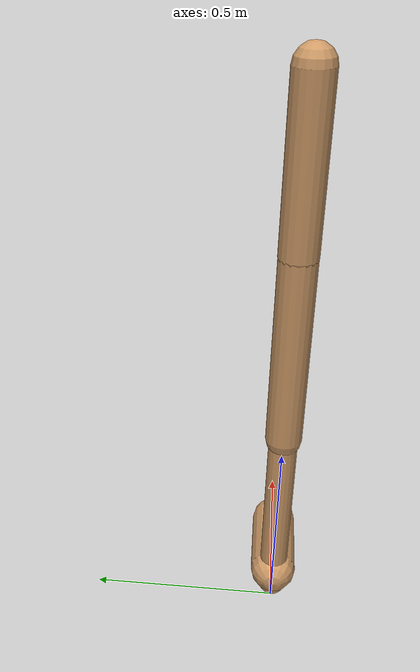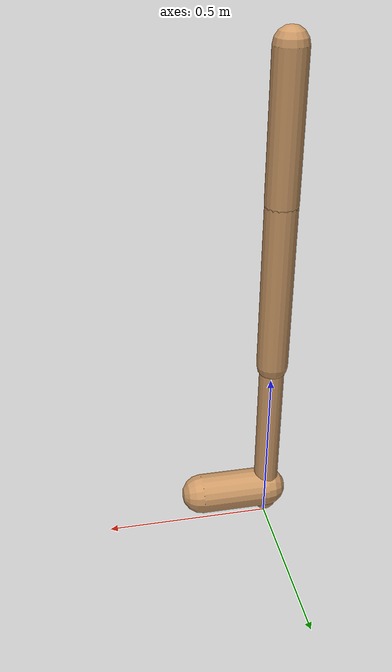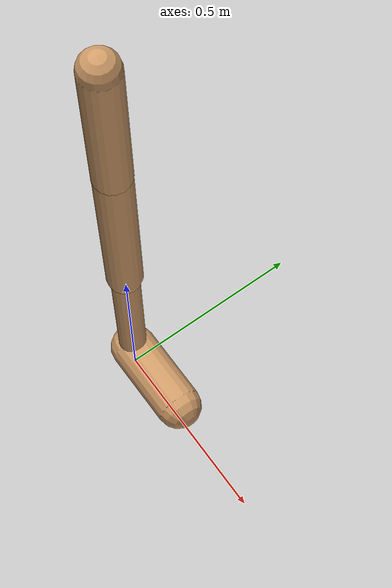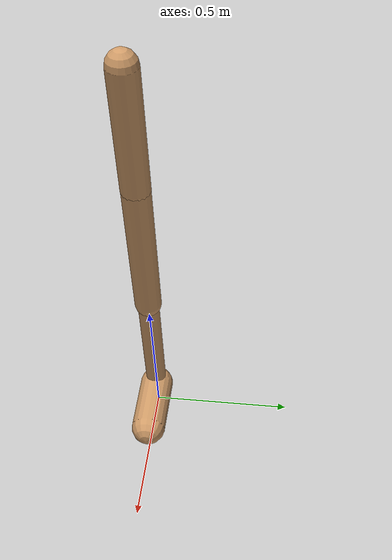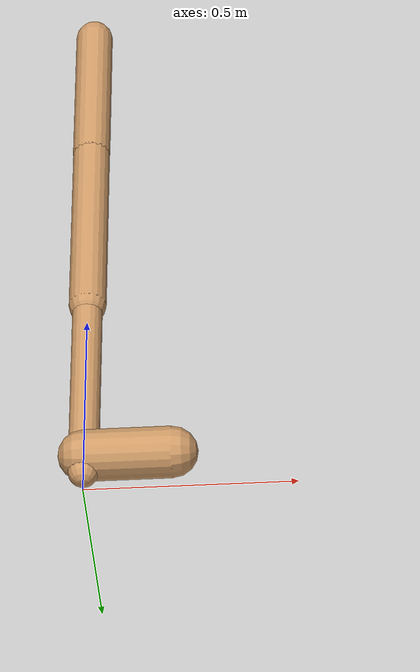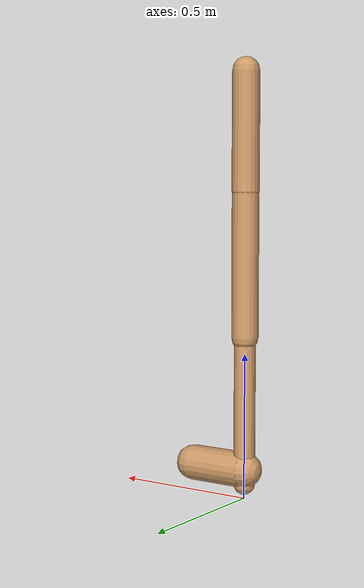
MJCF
<mujoco model="walker2d">
  <compiler angle="degree" coordinate="global" inertiafromgeom="true" />
  <default>
    <joint armature="0.01" damping=".1" limited="true" />
    <geom conaffinity="0" condim="3" contype="1" density="1000" friction="0.8 .1 .1" rgba="0.8 0.6 .4 1" />
  </default>
  <option integrator="RK4" timestep="0.002" />
  <worldbody>

    <body name="torso" pos="0 0 0.09145475375840392">
      <joint armature="0" axis="1 0 0" damping="0" limited="false" name="ignorex" pos="0 0 0" stiffness="0" type="slide" />
      <joint armature="0" axis="0 0 1" damping="0" limited="false" name="ignorez" pos="0 0 0" ref="1.25" stiffness="0" type="slide" />
      <joint armature="0" axis="0 1 0" damping="0" limited="false" name="ignorey" pos="0 0 0" stiffness="0" type="hinge" />
      <geom fromto="0 0 1.45 0 0 1.05" name="torso_geom" size="0.04643941735337781" type="capsule" />
      <body name="thigh">
        <joint axis="0 -1 0" name="thigh_joint" pos="0 0 1.05" range="-150 0" type="hinge" />
        <geom fromto="0.0 0.0 1.05 0.0 0.0 0.5566793271670718" name="thigh_geom" size="0.045697735717336894" type="capsule" />
        <body name="leg" pos="0.0 0.0 -0.043320672832928175">
          <joint axis="0 -1 0" name="leg_joint" pos="0 0 0.6" range="-150 0" type="hinge" />
          <geom fromto="0.0 0.0 0.6 0.0 0.0 0.05186591907452426" name="leg_geom" size="0.03655818857386951" type="capsule" />
          <body name="foot" pos="0.0 0.0 -0.04813408092547575">
            <joint axis="0 -1 0" name="foot_joint" pos="0 0 0.1" range="-45 45" type="hinge" />
            <geom fromto="-0.0 0.0 0.1 0.20727291376053425 0.0 0.1" name="foot_geom" size="0.060983197562008" type="capsule" />
          </body>
        </body>
      </body>

      <body name="thigh_left">
        <joint axis="0 -1 0" name="thigh_left_joint" pos="0 0 1.05" range="-150 0" type="hinge" />
        <geom fromto="0.0 0.0 1.05 0.0 0.0 0.5566793271670718" name="thigh_left_geom" rgba=".7 .3 .6 1" size="0.045697735717336894" type="capsule" />
        <body name="leg_left" pos="0.0 0.0 -0.043320672832928175">
          <joint axis="0 -1 0" name="leg_left_joint" pos="0 0 0.6" range="-150 0" type="hinge" />
          <geom fromto="0.0 0.0 0.6 0.0 0.0 0.05186591907452426" name="leg_left_geom" rgba=".7 .3 .6 1" size="0.03655818857386951" type="capsule" />
          <body name="foot_left" pos="0.0 0.0 -0.04813408092547575">
            <joint axis="0 -1 0" name="foot_left_joint" pos="0 0 0.1" range="-45 45" type="hinge" />
            <geom fromto="-0.0 0.0 0.1 0.20727291376053425 0.0 0.1" name="foot_left_geom" rgba=".7 .3 .6 1" size="0.060983197562008" type="capsule" />
          </body>
        </body>
      </body>
    </body>
  </worldbody>
  <actuator>

    <motor ctrllimited="true" ctrlrange="-1.0 1.0" gear="100" joint="thigh_joint" />
    <motor ctrllimited="true" ctrlrange="-1.0 1.0" gear="100" joint="leg_joint" />
    <motor ctrllimited="true" ctrlrange="-1.0 1.0" gear="100" joint="foot_joint" />
    <motor ctrllimited="true" ctrlrange="-1.0 1.0" gear="100" joint="thigh_left_joint" />
    <motor ctrllimited="true" ctrlrange="-1.0 1.0" gear="100" joint="leg_left_joint" />
    <motor ctrllimited="true" ctrlrange="-1.0 1.0" gear="100" joint="foot_left_joint" />

  </actuator>
</mujoco>
